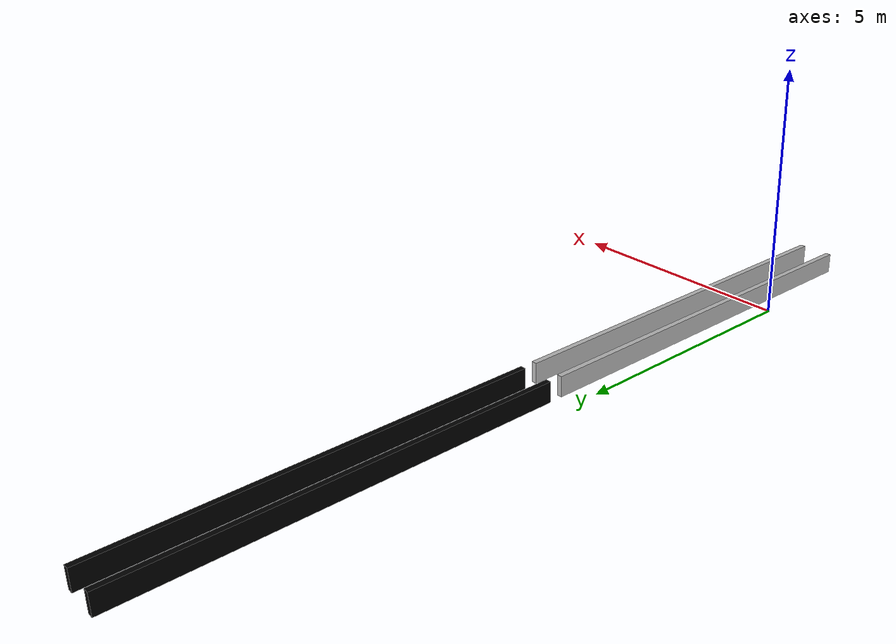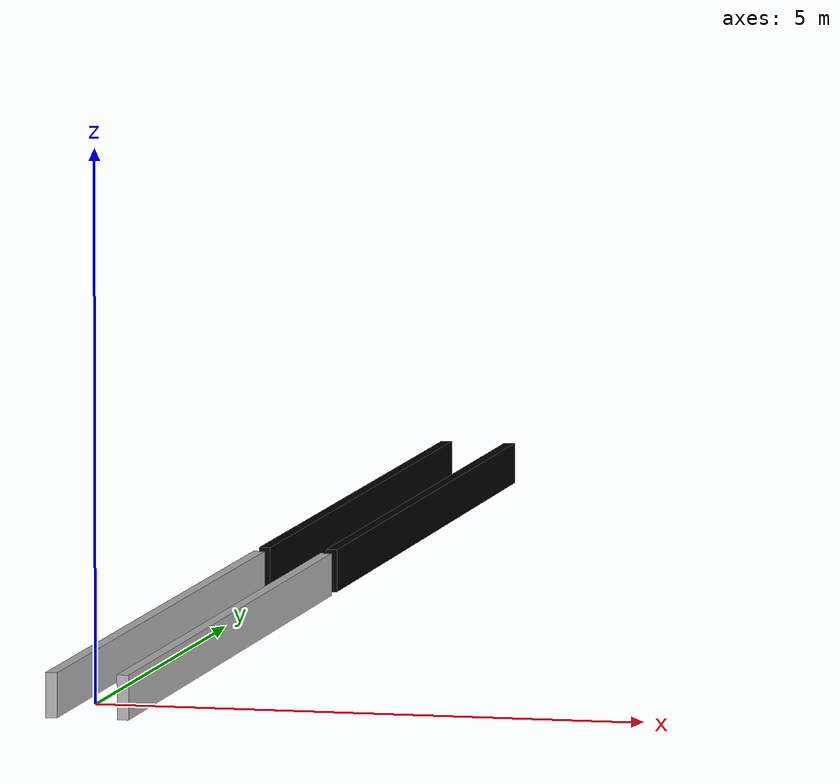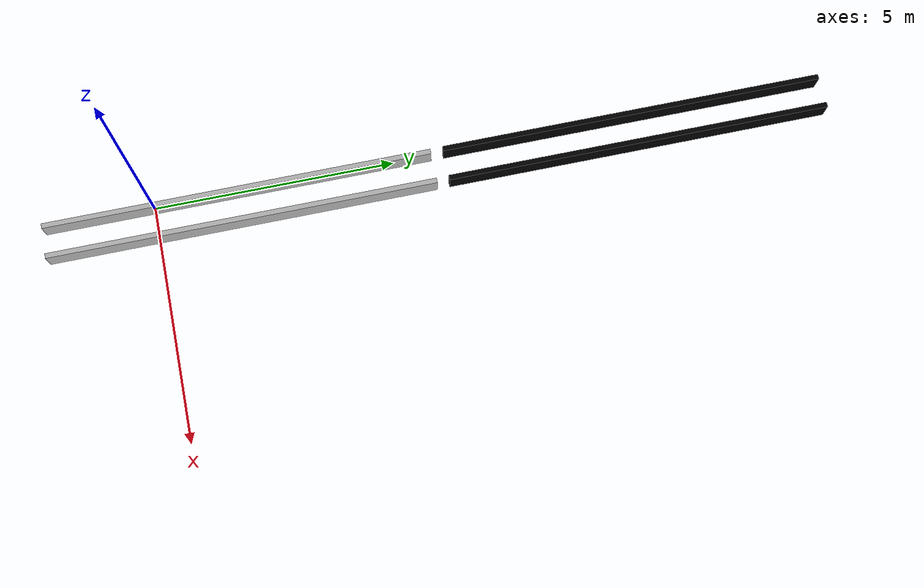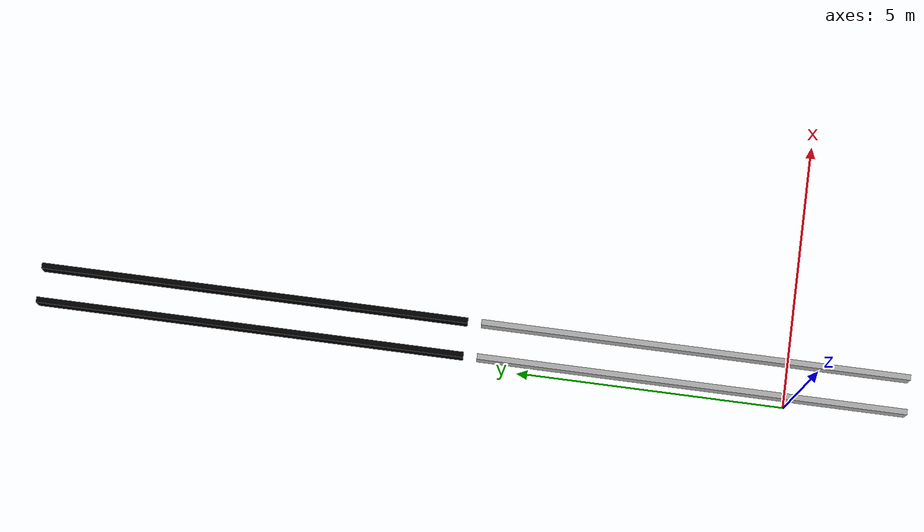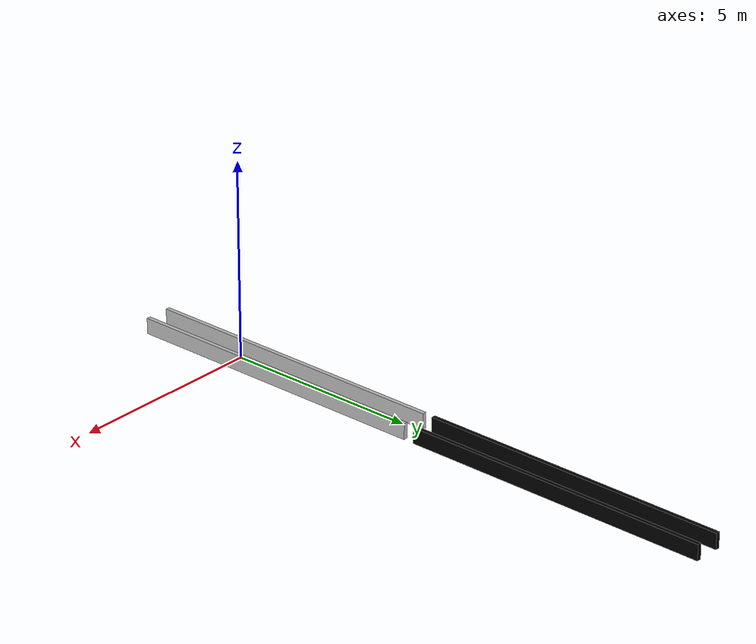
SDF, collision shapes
<?xml version='1.0'?>
<sdf version='1.7'>
  <model name='smart_factory_conveyor'>
    <link name='link'>
      <self_collide>0</self_collide>
      <enable_wind>0</enable_wind>
      <kinematic>0</kinematic>
      <pose>0.970587 11.6448 0 0 -0 3.14159</pose>
      <gravity>1</gravity>
      <inertial>
        <mass>1</mass>
        <pose>0 0 0 0 -0 0</pose>
        <inertia>
          <ixx>1</ixx>
          <ixy>0</ixy>
          <ixz>0</ixz>
          <iyy>1</iyy>
          <iyz>0</iyz>
          <izz>1</izz>
        </inertia>
      </inertial>
      <visual name='visual'>
        <geometry>
          <mesh>
            <scale>0.9 0.7 1.3</scale>
            <uri>./meshes/ShippingContainer_Textured.obj</uri>
          </mesh>
        </geometry>
        <material>
          <shader type='pixel'>
            <normal_map>__default__</normal_map>
          </shader>
          <script>
            <name>ModelPreview_1::link::visual_MATERIAL_</name>
          </script>
          <ambient>0 0 0 1</ambient>
          <diffuse>0 0 0 1</diffuse>
          <specular>0 0 0 1</specular>
          <emissive>0 0 0 1</emissive>
        </material>
        <pose>0 0 0 0 -0 0</pose>
        <transparency>0</transparency>
        <cast_shadows>1</cast_shadows>
      </visual>
      <collision name='collision_belt_side_front'>
        <laser_retro>0</laser_retro>
        <max_contacts>10</max_contacts>
        <pose>0.83 1.6275 0.41 0 -0 0</pose>
        <geometry>
          <box>
            <size>0.105 7.98 0.4</size>
          </box>
        </geometry>
        <surface>
          <friction>
            <ode>
              <mu>1</mu>
              <mu2>1</mu2>
              <fdir1>0 0 0</fdir1>
              <slip1>0</slip1>
              <slip2>0</slip2>
            </ode>
            <torsional>
              <coefficient>1</coefficient>
              <patch_radius>0</patch_radius>
              <surface_radius>0</surface_radius>
              <use_patch_radius>1</use_patch_radius>
              <ode>
                <slip>0</slip>
              </ode>
            </torsional>
          </friction>
          <bounce>
            <restitution_coefficient>0</restitution_coefficient>
            <threshold>1e+06</threshold>
          </bounce>
          <contact>
            <collide_without_contact>0</collide_without_contact>
            <collide_without_contact_bitmask>1</collide_without_contact_bitmask>
            <collide_bitmask>1</collide_bitmask>
            <ode>
              <soft_cfm>0</soft_cfm>
              <soft_erp>0.2</soft_erp>
              <kp>1e+13</kp>
              <kd>1</kd>
              <max_vel>0.01</max_vel>
              <min_depth>0</min_depth>
            </ode>
            <bullet>
              <split_impulse>1</split_impulse>
              <split_impulse_penetration_threshold>-0.01</split_impulse_penetration_threshold>
              <soft_cfm>0</soft_cfm>
              <soft_erp>0.2</soft_erp>
              <kp>1e+13</kp>
              <kd>1</kd>
            </bullet>
          </contact>
        </surface>
      </collision>
      <collision name='collision_belt_side_back'>
        <laser_retro>0</laser_retro>
        <max_contacts>10</max_contacts>
        <pose>0.185 1.6275 0.41 0 -0 0</pose>
        <geometry>
          <box>
            <size>0.105 7.98 0.4</size>
          </box>
        </geometry>
        <surface>
          <friction>
            <ode>
              <mu>1</mu>
              <mu2>1</mu2>
              <fdir1>0 0 0</fdir1>
              <slip1>0</slip1>
              <slip2>0</slip2>
            </ode>
            <torsional>
              <coefficient>1</coefficient>
              <patch_radius>0</patch_radius>
              <surface_radius>0</surface_radius>
              <use_patch_radius>1</use_patch_radius>
              <ode>
                <slip>0</slip>
              </ode>
            </torsional>
          </friction>
          <bounce>
            <restitution_coefficient>0</restitution_coefficient>
            <threshold>1e+06</threshold>
          </bounce>
          <contact>
            <collide_without_contact>0</collide_without_contact>
            <collide_without_contact_bitmask>1</collide_without_contact_bitmask>
            <collide_bitmask>1</collide_bitmask>
            <ode>
              <soft_cfm>0</soft_cfm>
              <soft_erp>0.2</soft_erp>
              <kp>1e+13</kp>
              <kd>1</kd>
              <max_vel>0.01</max_vel>
              <min_depth>0</min_depth>
            </ode>
            <bullet>
              <split_impulse>1</split_impulse>
              <split_impulse_penetration_threshold>-0.01</split_impulse_penetration_threshold>
              <soft_cfm>0</soft_cfm>
              <soft_erp>0.2</soft_erp>
              <kp>1e+13</kp>
              <kd>1</kd>
            </bullet>
          </contact>
        </surface>
      </collision>
    </link>
    <model name='shipping_container_conveyor_tall_ariac'>
      <static>1</static>
      <link name='link'>
        <collision name='collision_belt_side_front'>
          <pose>0.83 1.6275 0.41 0 -0 0</pose>
          <max_contacts>10</max_contacts>
          <geometry>
            <box>
              <size>0.105 7.98 0.4</size>
            </box>
          </geometry>
        </collision>
        <collision name='collision_belt_side_back'>
          <pose>0.185 1.6275 0.41 0 -0 0</pose>
          <max_contacts>10</max_contacts>
          <geometry>
            <box>
              <size>0.105 7.98 0.4</size>
            </box>
          </geometry>
        </collision>
        <visual name='visual'>
          <geometry>
            <mesh>
              <scale>0.9 0.7 1.3</scale>
              <uri>./meshes/ShippingContainer_Textured.obj</uri>
            </mesh>
          </geometry>
        </visual>
      </link>
      <pose>-0.039126 0.152016 0 0 -0 0</pose>
    </model>
    <static>1</static>
    <allow_auto_disable>1</allow_auto_disable>
  </model>
</sdf>
